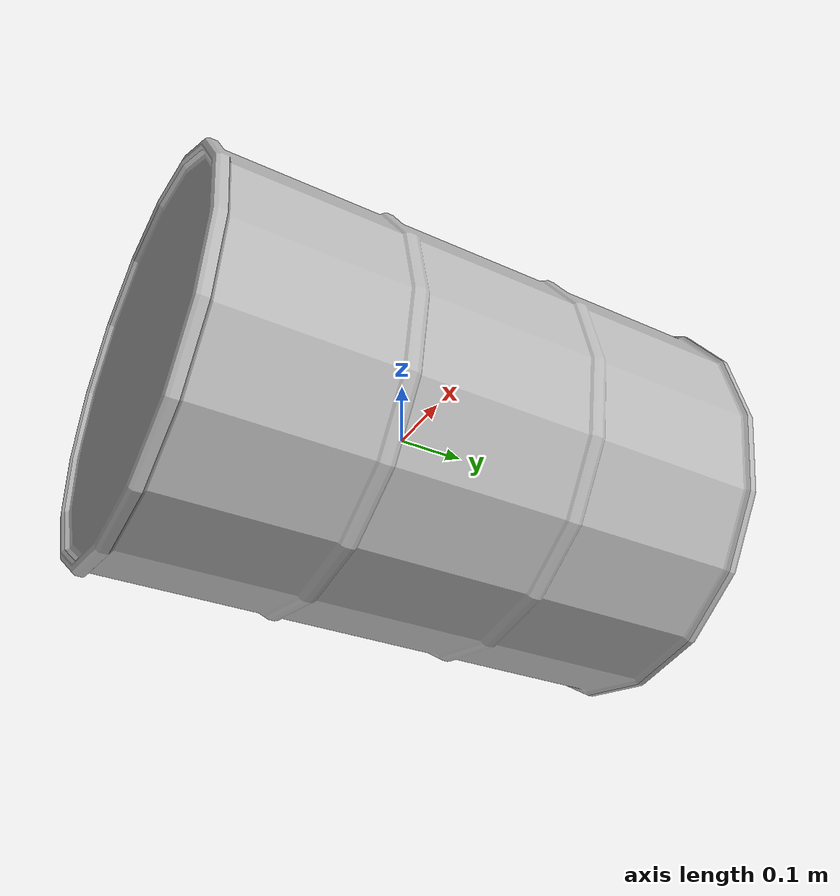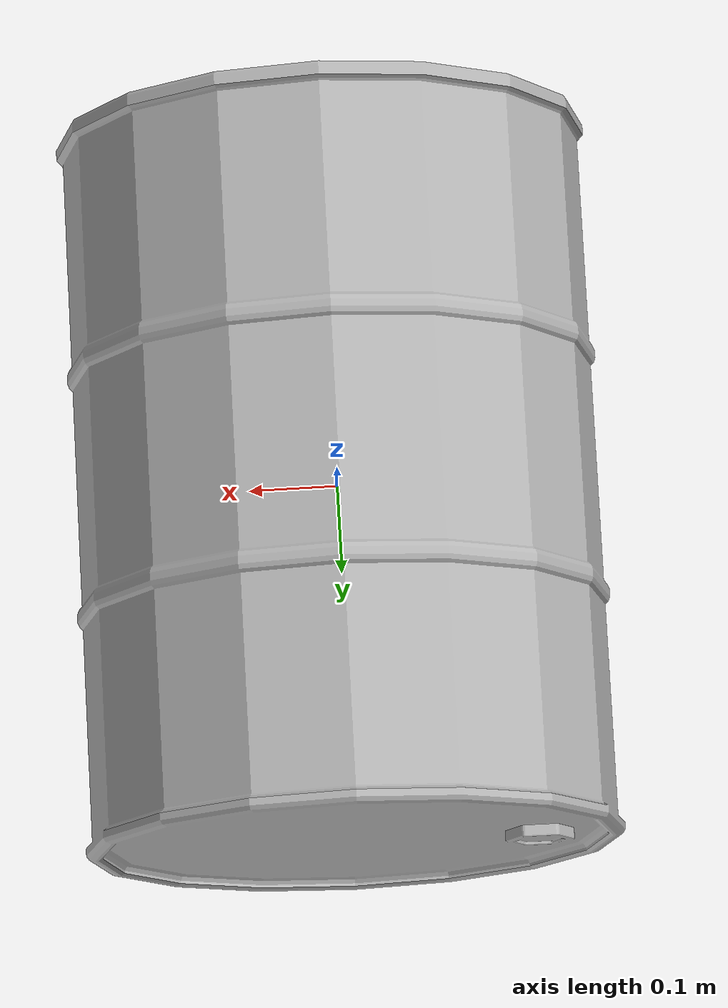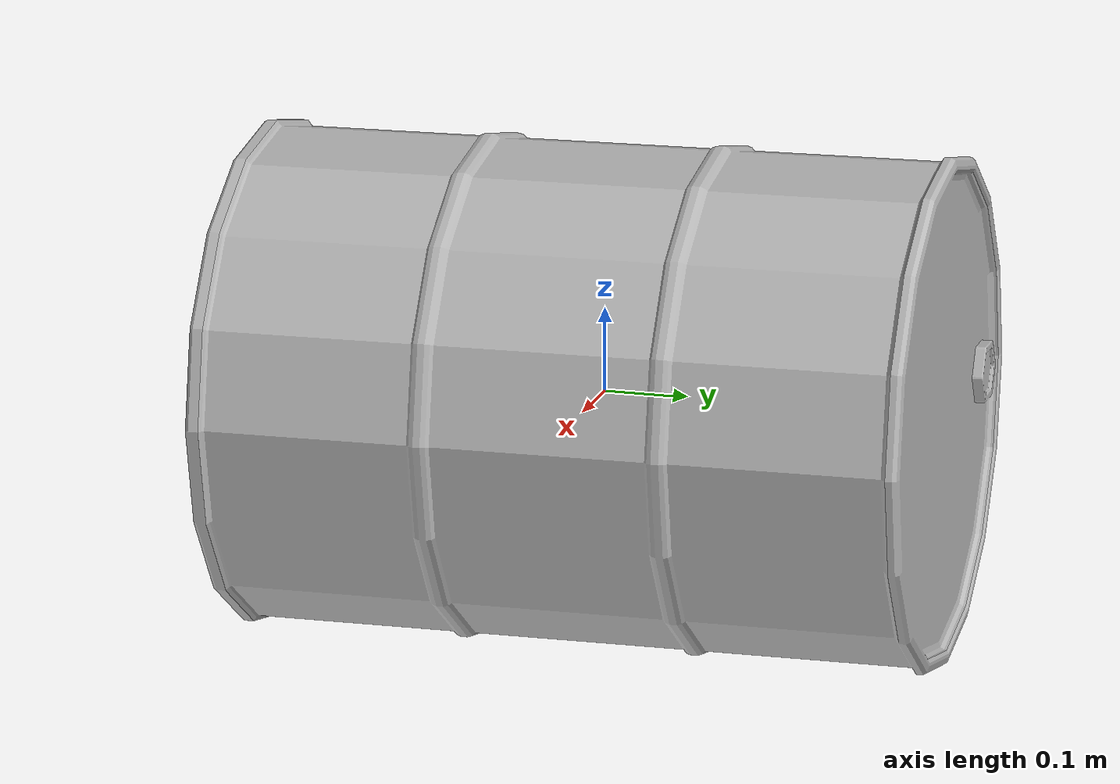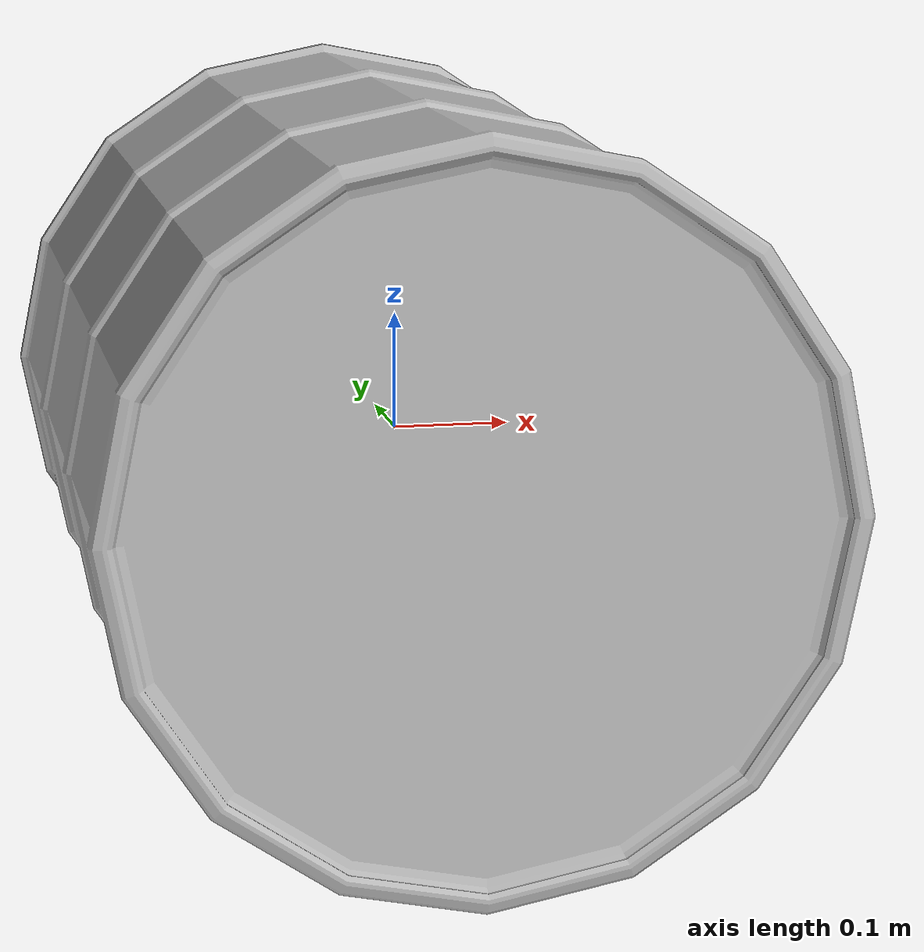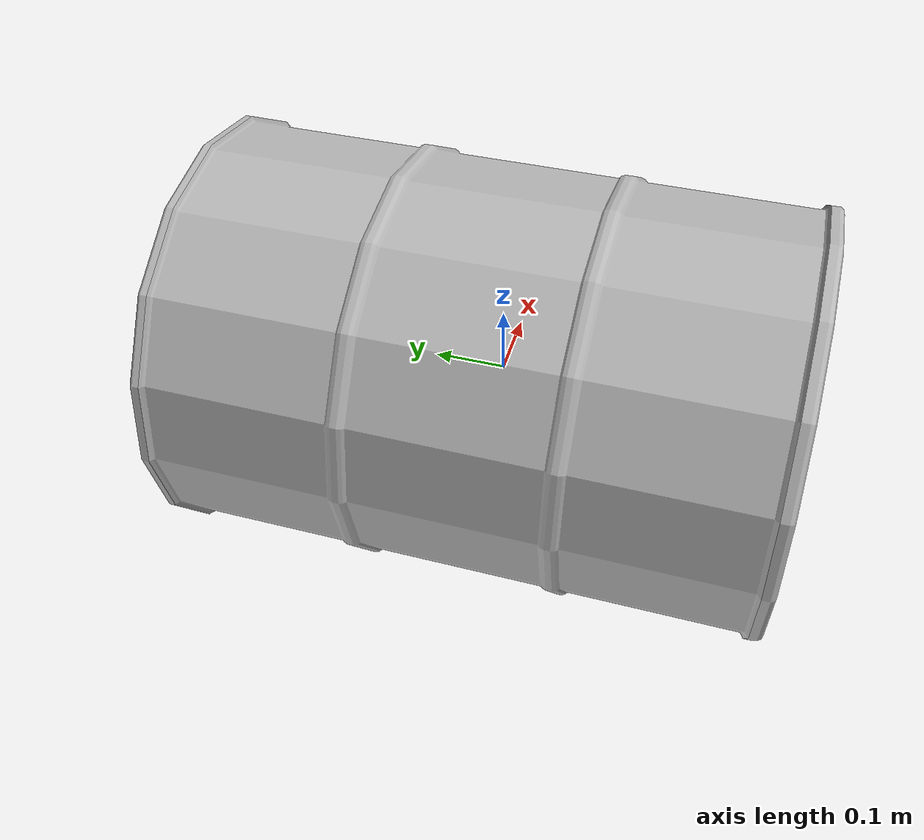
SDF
<?xml version="1.0"?>
<sdf version="1.6">
  <model name="toxic_barrel">
    <static>false</static>  <!-- set false if it should move -->
    <link name="link">
      <visual name="visual">
        <geometry>
          <mesh>
            <uri>model://toxic_barrel/meshes/barrel_red.obj</uri>
          </mesh>
        </geometry>
      </visual>
      <collision name="collision">
        <geometry>
          <mesh>
            <uri>model://toxic_barrel/meshes/barrel_red.obj</uri>
          </mesh>
        </geometry>
      </collision>
    </link>
  </model>
</sdf>
